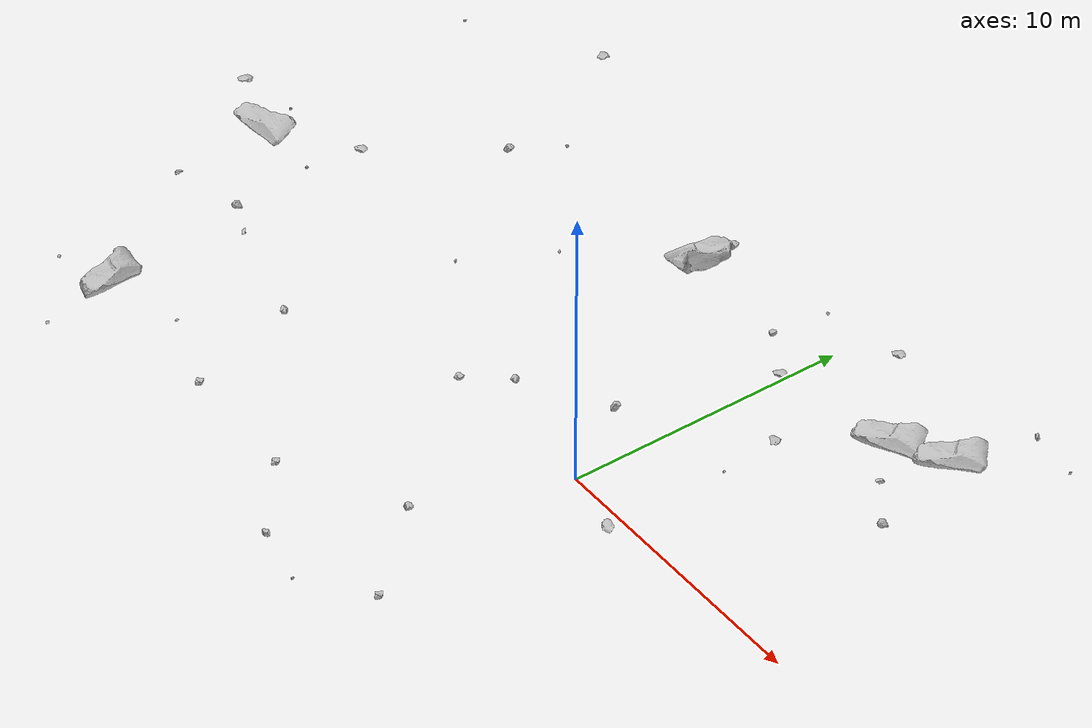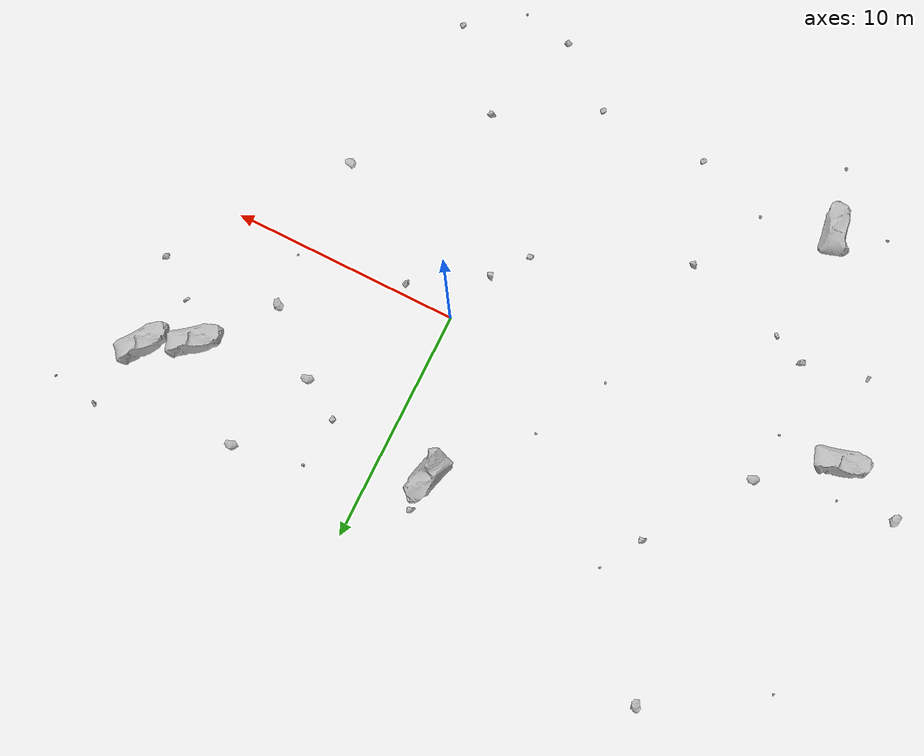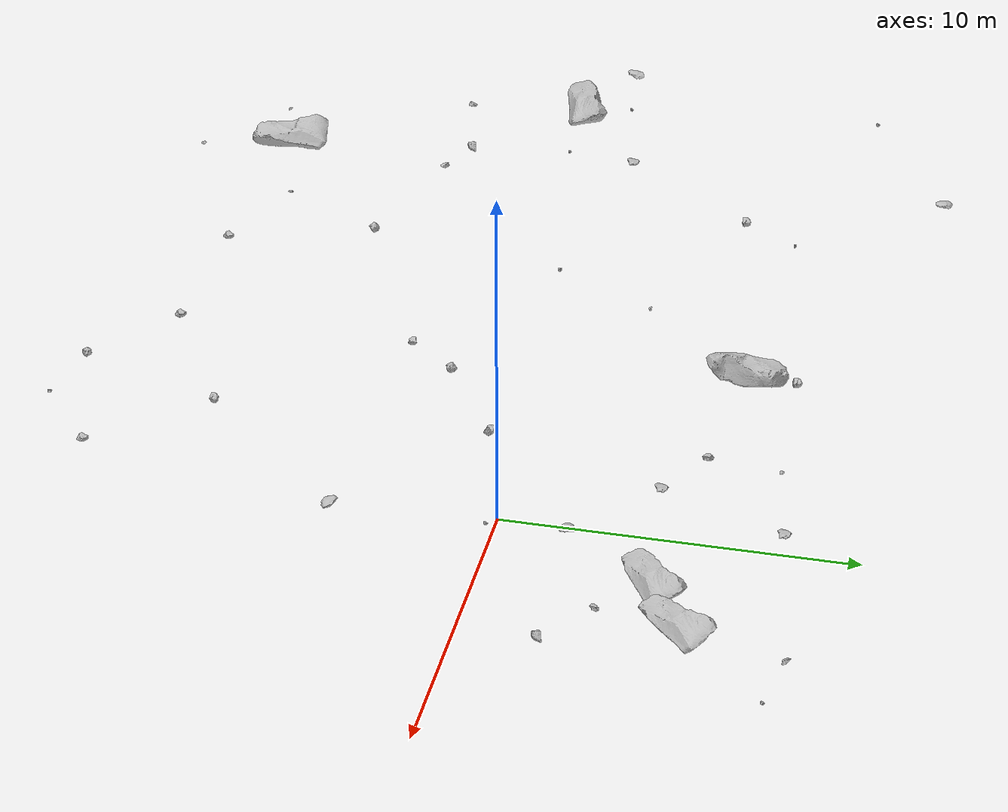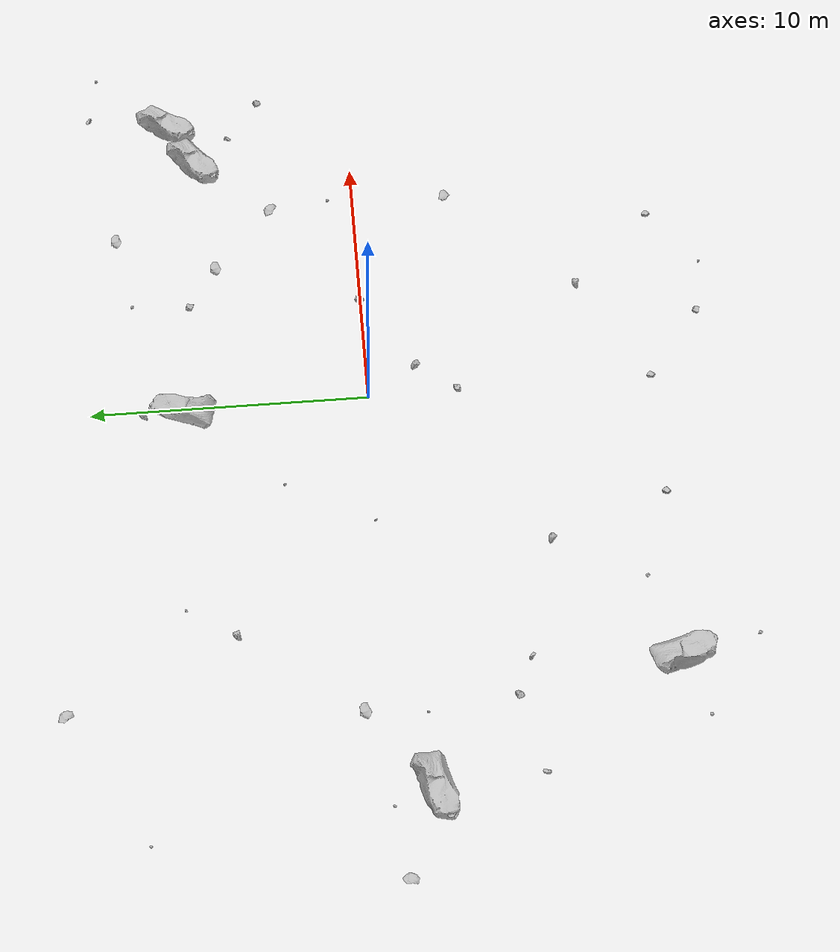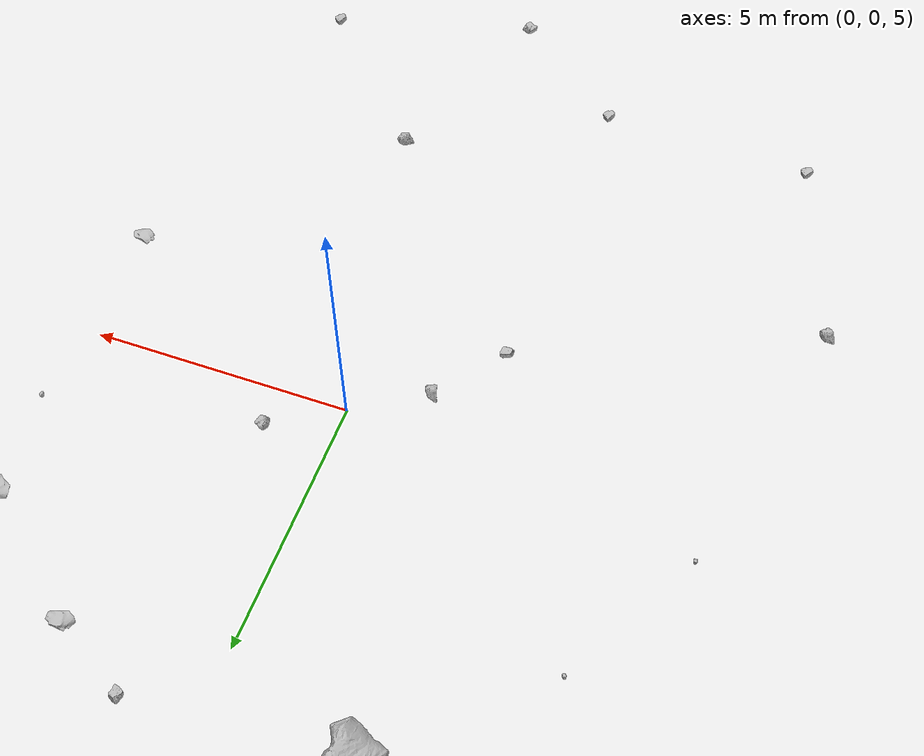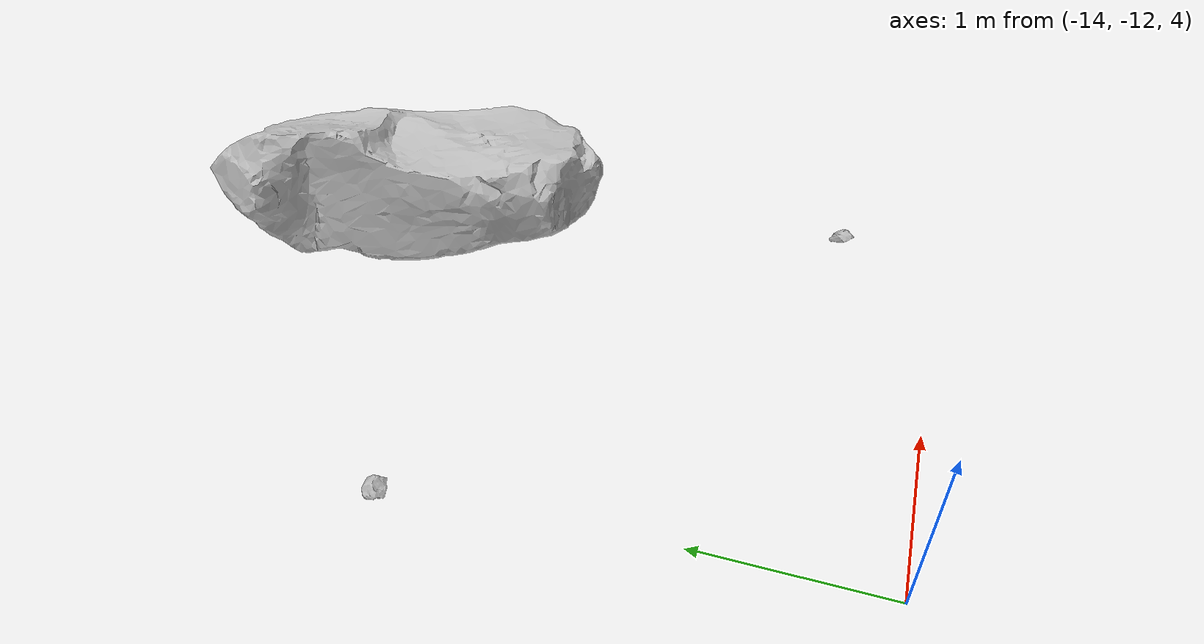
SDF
<sdf version="1.7">
 <world name="marsyard">
  <gravity>0 0 -9.81</gravity>
  <physics name="dart_physics" type="ignored">
   <max_step_size>0.003</max_step_size>
   <real_time_update_rate>333</real_time_update_rate>
   <real_time_factor>1.0</real_time_factor>
  </physics>
  <plugin filename="ignition-gazebo-physics-system" name="ignition::gazebo::systems::Physics"/>
  <plugin filename="ignition-gazebo-user-commands-system" name="ignition::gazebo::systems::UserCommands"/>
  <plugin filename="ignition-gazebo-scene-broadcaster-system" name="ignition::gazebo::systems::SceneBroadcaster"/>
  <plugin filename="ignition-gazebo-contact-system" name="ignition::gazebo::systems::Contact"/>
  <scene>
   <ambient>0.95 0.95 0.95 1</ambient>
   <background>0.70 0.70 0.70 1</background>
   <shadows>false</shadows>
  </scene>
  <light type="directional" name="sun">
   <cast_shadows>false</cast_shadows>
   <pose>0 0 30 0 0 0</pose>
   <diffuse>1 1 1 1</diffuse>
   <specular>0.15 0.15 0.15 1</specular>
   <direction>-0.35 0.1 -0.93</direction>
  </light>
  <model name="Rock_3">
   <static>true</static>
   <pose>-16.8774 7.7496 4.0000 0.0000 0.0000 -2.1353</pose>
   <link name="link">
    <visual name="visual">
     <geometry><mesh><uri>package://rock_generator/rocks_ws/rock_9/meshes/rock_9.stl</uri></mesh></geometry>
    </visual>
    <collision name="collision">
     <geometry><mesh><uri>package://rock_generator/rocks_ws/rock_9/meshes/rock_9.stl</uri></mesh></geometry>
    </collision>
   </link>
  </model>
  <model name="Rock_4">
   <static>true</static>
   <pose>-10.3779 4.8238 4.0000 0.0000 0.0000 0.2378</pose>
   <link name="link">
    <visual name="visual">
     <geometry><mesh><uri>package://rock_generator/rocks_ws/rock_3/meshes/rock_3.stl</uri></mesh></geometry>
    </visual>
    <collision name="collision">
     <geometry><mesh><uri>package://rock_generator/rocks_ws/rock_3/meshes/rock_3.stl</uri></mesh></geometry>
    </collision>
   </link>
  </model>
  <model name="Rock_5">
   <static>true</static>
   <pose>-1.1378 -1.5239 4.0000 0.0000 0.0000 -1.2308</pose>
   <link name="link">
    <visual name="visual">
     <geometry><mesh><uri>package://rock_generator/rocks_ws/rock_3/meshes/rock_3.stl</uri></mesh></geometry>
    </visual>
    <collision name="collision">
     <geometry><mesh><uri>package://rock_generator/rocks_ws/rock_3/meshes/rock_3.stl</uri></mesh></geometry>
    </collision>
   </link>
  </model>
  <model name="Rock_7">
   <static>true</static>
   <pose>-11.7680 -4.2157 4.0000 0.0000 0.0000 -0.8386</pose>
   <link name="link">
    <visual name="visual">
     <geometry><mesh><uri>package://rock_generator/rocks_ws/rock_6/meshes/rock_6.stl</uri></mesh></geometry>
    </visual>
   </link>
  </model>
  <model name="Rock_8">
   <static>true</static>
   <pose>-12.6309 10.2912 4.0000 0.0000 0.0000 1.8268</pose>
   <link name="link">
    <visual name="visual">
     <geometry><mesh><uri>package://rock_generator/rocks_ws/rock_8/meshes/rock_8.stl</uri></mesh></geometry>
    </visual>
    <collision name="collision">
     <geometry><mesh><uri>package://rock_generator/rocks_ws/rock_8/meshes/rock_8.stl</uri></mesh></geometry>
    </collision>
   </link>
  </model>
  <model name="Rock_9">
   <static>true</static>
   <pose>-13.3449 -0.8286 4.0000 0.0000 0.0000 0.4350</pose>
   <link name="link">
    <visual name="visual">
     <geometry><mesh><uri>package://rock_generator/rocks_ws/rock_9/meshes/rock_9.stl</uri></mesh></geometry>
    </visual>
    <collision name="collision">
     <geometry><mesh><uri>package://rock_generator/rocks_ws/rock_9/meshes/rock_9.stl</uri></mesh></geometry>
    </collision>
   </link>
  </model>
  <model name="Rock_10">
   <static>true</static>
   <pose>-2.1005 -9.3647 4.0000 0.0000 0.0000 0.0830</pose>
   <link name="link">
    <visual name="visual">
     <geometry><mesh><uri>package://rock_generator/rocks_ws/rock_1/meshes/rock_1.stl</uri></mesh></geometry>
    </visual>
   </link>
  </model>
  <model name="Rock_11">
   <static>true</static>
   <pose>-6.4499 -9.2282 4.0000 0.0000 0.0000 -0.0949</pose>
   <link name="link">
    <visual name="visual">
     <geometry><mesh><uri>package://rock_generator/rocks_ws/rock_1/meshes/rock_1.stl</uri></mesh></geometry>
    </visual>
    <collision name="collision">
     <geometry><mesh><uri>package://rock_generator/rocks_ws/rock_1/meshes/rock_1.stl</uri></mesh></geometry>
    </collision>
   </link>
  </model>
  <model name="Rock_12">
   <static>true</static>
   <pose>-2.0879 -2.8030 4.0000 0.0000 0.0000 -0.7704</pose>
   <link name="link">
    <visual name="visual">
     <geometry><mesh><uri>package://rock_generator/rocks_ws/rock_1/meshes/rock_1.stl</uri></mesh></geometry>
    </visual>
   </link>
  </model>
  <model name="Rock_13">
   <static>true</static>
   <pose>10.0598 9.4664 4.0000 0.0000 0.0000 2.4888</pose>
   <link name="link">
    <visual name="visual">
     <geometry><mesh><uri>package://rock_generator/rocks_ws/rock_6/meshes/rock_6.stl</uri></mesh></geometry>
    </visual>
    <collision name="collision">
     <geometry><mesh><uri>package://rock_generator/rocks_ws/rock_6/meshes/rock_6.stl</uri></mesh></geometry>
    </collision>
   </link>
  </model>
  <model name="Rock_14">
   <static>true</static>
   <pose>3.3460 5.1174 4.0000 0.0000 0.0000 -3.1135</pose>
   <link name="link">
    <visual name="visual">
     <geometry><mesh><uri>package://rock_generator/rocks_ws/rock_8/meshes/rock_8.stl</uri></mesh></geometry>
    </visual>
   </link>
  </model>
  <model name="Rock_15">
   <static>true</static>
   <pose>-15.5001 -4.2381 4.0000 0.0000 0.0000 1.2493</pose>
   <link name="link">
    <visual name="visual">
     <geometry><mesh><uri>package://rock_generator/rocks_ws/rock_6/meshes/rock_6.stl</uri></mesh></geometry>
    </visual>
    <collision name="collision">
     <geometry><mesh><uri>package://rock_generator/rocks_ws/rock_6/meshes/rock_6.stl</uri></mesh></geometry>
    </collision>
   </link>
  </model>
  <model name="Rock_16">
   <static>true</static>
   <pose>-12.0809 -8.9504 4.0000 0.0000 0.0000 1.9508</pose>
   <link name="link">
    <visual name="visual">
     <geometry><mesh><uri>package://rock_generator/rocks_ws/rock_4/meshes/rock_4.stl</uri></mesh></geometry>
    </visual>
   </link>
  </model>
  <model name="Rock_17">
   <static>true</static>
   <pose>5.6757 3.1068 4.0000 0.0000 0.0000 2.2875</pose>
   <link name="link">
    <visual name="visual">
     <geometry><mesh><uri>package://rock_generator/rocks_ws/rock_8/meshes/rock_8.stl</uri></mesh></geometry>
    </visual>
   </link>
  </model>
  <model name="Rock_18">
   <static>true</static>
   <pose>9.4734 6.6103 4.0000 0.0000 0.0000 1.0897</pose>
   <link name="link">
    <visual name="visual">
     <geometry><mesh><uri>package://rock_generator/rocks_ws/rock_4/meshes/rock_4.stl</uri></mesh></geometry>
    </visual>
   </link>
  </model>
  <model name="Rock_19">
   <static>true</static>
   <pose>5.8024 -3.1261 4.0000 0.0000 0.0000 -0.5696</pose>
   <link name="link">
    <visual name="visual">
     <geometry><mesh><uri>package://rock_generator/rocks_ws/rock_8/meshes/rock_8.stl</uri></mesh></geometry>
    </visual>
   </link>
  </model>
  <model name="Rock_21">
   <static>true</static>
   <pose>-2.2879 7.6154 4.0000 0.0000 0.0000 0.3201</pose>
   <link name="link">
    <visual name="visual">
     <geometry><mesh><uri>package://rock_generator/rocks_ws/rock_3/meshes/rock_3.stl</uri></mesh></geometry>
    </visual>
   </link>
  </model>
  <model name="Rock_22">
   <static>true</static>
   <pose>8.8811 4.4704 4.0000 0.0000 0.0000 -2.2113</pose>
   <link name="link">
    <visual name="visual">
     <geometry><mesh><uri>package://rock_generator/rocks_ws/rock_6/meshes/rock_6.stl</uri></mesh></geometry>
    </visual>
    <collision name="collision">
     <geometry><mesh><uri>package://rock_generator/rocks_ws/rock_6/meshes/rock_6.stl</uri></mesh></geometry>
    </collision>
   </link>
  </model>
  <model name="Rock_24">
   <static>true</static>
   <pose>-13.0302 -3.5896 4.0000 0.0000 0.0000 -2.8156</pose>
   <link name="link">
    <visual name="visual">
     <geometry><mesh><uri>package://rock_generator/rocks_ws/rock_3/meshes/rock_3.stl</uri></mesh></geometry>
    </visual>
    <collision name="collision">
     <geometry><mesh><uri>package://rock_generator/rocks_ws/rock_3/meshes/rock_3.stl</uri></mesh></geometry>
    </collision>
   </link>
  </model>
  <model name="Rock_25">
   <static>true</static>
   <pose>-6.7299 0.2784 4.0000 0.0000 0.0000 1.7490</pose>
   <link name="link">
    <visual name="visual">
     <geometry><mesh><uri>package://rock_generator/rocks_ws/rock_9/meshes/rock_9.stl</uri></mesh></geometry>
    </visual>
   </link>
  </model>
  <model name="Rock_26">
   <static>true</static>
   <pose>-9.3358 -8.2083 4.0000 0.0000 0.0000 -1.0528</pose>
   <link name="link">
    <visual name="visual">
     <geometry><mesh><uri>package://rock_generator/rocks_ws/rock_5/meshes/rock_5.stl</uri></mesh></geometry>
    </visual>
    <collision name="collision">
     <geometry><mesh><uri>package://rock_generator/rocks_ws/rock_5/meshes/rock_5.stl</uri></mesh></geometry>
    </collision>
   </link>
  </model>
  <model name="Rock_27">
   <static>true</static>
   <pose>10.3526 3.4314 4.0000 0.0000 0.0000 -2.7477</pose>
   <link name="link">
    <visual name="visual">
     <geometry><mesh><uri>package://rock_generator/rocks_ws/rock_3/meshes/rock_3.stl</uri></mesh></geometry>
    </visual>
    <collision name="collision">
     <geometry><mesh><uri>package://rock_generator/rocks_ws/rock_3/meshes/rock_3.stl</uri></mesh></geometry>
    </collision>
   </link>
  </model>
  <model name="Rock_28">
   <static>true</static>
   <pose>0.3383 -11.3156 4.0000 0.0000 0.0000 1.7949</pose>
   <link name="link">
    <visual name="visual">
     <geometry><mesh><uri>package://rock_generator/rocks_ws/rock_1/meshes/rock_1.stl</uri></mesh></geometry>
    </visual>
   </link>
  </model>
  <model name="Rock_29">
   <static>true</static>
   <pose>-14.0843 -9.5011 4.0000 0.0000 0.0000 0.1468</pose>
   <link name="link">
    <visual name="visual">
     <geometry><mesh><uri>package://rock_generator/rocks_ws/rock_5/meshes/rock_5.stl</uri></mesh></geometry>
    </visual>
   </link>
  </model>
  <model name="Rock_30">
   <static>true</static>
   <pose>-2.2867 6.3885 4.0000 0.0000 0.0000 -1.6627</pose>
   <link name="link">
    <visual name="visual">
     <geometry><mesh><uri>package://rock_generator/rocks_ws/rock_4/meshes/rock_4.stl</uri></mesh></geometry>
    </visual>
   </link>
  </model>
  <model name="Rock_31">
   <static>true</static>
   <pose>1.8015 6.0356 4.0000 0.0000 0.0000 -2.6884</pose>
   <link name="link">
    <visual name="visual">
     <geometry><mesh><uri>package://rock_generator/rocks_ws/rock_1/meshes/rock_1.stl</uri></mesh></geometry>
    </visual>
    <collision name="collision">
     <geometry><mesh><uri>package://rock_generator/rocks_ws/rock_1/meshes/rock_1.stl</uri></mesh></geometry>
    </collision>
   </link>
  </model>
  <model name="Rock_33">
   <static>true</static>
   <pose>7.7605 5.6714 4.0000 0.0000 0.0000 0.8023</pose>
   <link name="link">
    <visual name="visual">
     <geometry><mesh><uri>package://rock_generator/rocks_ws/rock_4/meshes/rock_4.stl</uri></mesh></geometry>
    </visual>
   </link>
  </model>
  <model name="Rock_35">
   <static>true</static>
   <pose>11.8625 9.1941 4.0000 0.0000 0.0000 -1.9782</pose>
   <link name="link">
    <visual name="visual">
     <geometry><mesh><uri>package://rock_generator/rocks_ws/rock_9/meshes/rock_9.stl</uri></mesh></geometry>
    </visual>
   </link>
  </model>
  <model name="Rock_36">
   <static>true</static>
   <pose>-5.2291 3.1490 4.0000 0.0000 0.0000 2.2392</pose>
   <link name="link">
    <visual name="visual">
     <geometry><mesh><uri>package://rock_generator/rocks_ws/rock_9/meshes/rock_9.stl</uri></mesh></geometry>
    </visual>
   </link>
  </model>
  <model name="Rock_37">
   <static>true</static>
   <pose>-13.1543 1.1170 4.0000 0.0000 0.0000 -3.0749</pose>
   <link name="link">
    <visual name="visual">
     <geometry><mesh><uri>package://rock_generator/rocks_ws/rock_8/meshes/rock_8.stl</uri></mesh></geometry>
    </visual>
   </link>
  </model>
  <model name="Rock_38">
   <static>true</static>
   <pose>4.7293 8.5565 4.0000 0.0000 0.0000 3.1041</pose>
   <link name="link">
    <visual name="visual">
     <geometry><mesh><uri>package://rock_generator/rocks_ws/rock_8/meshes/rock_8.stl</uri></mesh></geometry>
    </visual>
    <collision name="collision">
     <geometry><mesh><uri>package://rock_generator/rocks_ws/rock_8/meshes/rock_8.stl</uri></mesh></geometry>
    </collision>
   </link>
  </model>
  <model name="Rock_39">
   <static>true</static>
   <pose>5.9063 1.0317 4.0000 0.0000 0.0000 -1.9682</pose>
   <link name="link">
    <visual name="visual">
     <geometry><mesh><uri>package://rock_generator/rocks_ws/rock_9/meshes/rock_9.stl</uri></mesh></geometry>
    </visual>
    <collision name="collision">
     <geometry><mesh><uri>package://rock_generator/rocks_ws/rock_9/meshes/rock_9.stl</uri></mesh></geometry>
    </collision>
   </link>
  </model>
  <model name="Rock_40">
   <static>true</static>
   <pose>-16.2108 0.4451 4.0000 0.0000 0.0000 -2.2247</pose>
   <link name="link">
    <visual name="visual">
     <geometry><mesh><uri>package://rock_generator/rocks_ws/rock_9/meshes/rock_9.stl</uri></mesh></geometry>
    </visual>
   </link>
  </model>
  <model name="Rock_42">
   <static>true</static>
   <pose>-18.4068 0.1471 4.0000 0.0000 0.0000 1.1604</pose>
   <link name="link">
    <visual name="visual">
     <geometry><mesh><uri>package://rock_generator/rocks_ws/rock_8/meshes/rock_8.stl</uri></mesh></geometry>
    </visual>
    <collision name="collision">
     <geometry><mesh><uri>package://rock_generator/rocks_ws/rock_8/meshes/rock_8.stl</uri></mesh></geometry>
    </collision>
   </link>
  </model>
  <model name="Rock_43">
   <static>true</static>
   <pose>-9.4274 6.4943 4.0000 0.0000 0.0000 0.3523</pose>
   <link name="link">
    <visual name="visual">
     <geometry><mesh><uri>package://rock_generator/rocks_ws/rock_9/meshes/rock_9.stl</uri></mesh></geometry>
    </visual>
   </link>
  </model>
  <model name="Rock_44">
   <static>true</static>
   <pose>4.4074 -10.1339 4.0000 0.0000 0.0000 0.1603</pose>
   <link name="link">
    <visual name="visual">
     <geometry><mesh><uri>package://rock_generator/rocks_ws/rock_1/meshes/rock_1.stl</uri></mesh></geometry>
    </visual>
   </link>
  </model>
  <model name="Rock_45">
   <static>true</static>
   <pose>2.3505 -11.7096 4.0000 0.0000 0.0000 -1.4420</pose>
   <link name="link">
    <visual name="visual">
     <geometry><mesh><uri>package://rock_generator/rocks_ws/rock_9/meshes/rock_9.stl</uri></mesh></geometry>
    </visual>
    <collision name="collision">
     <geometry><mesh><uri>package://rock_generator/rocks_ws/rock_9/meshes/rock_9.stl</uri></mesh></geometry>
    </collision>
   </link>
  </model>
  <model name="Rock_46">
   <static>true</static>
   <pose>1.7502 -7.4059 4.0000 0.0000 0.0000 -0.1789</pose>
   <link name="link">
    <visual name="visual">
     <geometry><mesh><uri>package://rock_generator/rocks_ws/rock_3/meshes/rock_3.stl</uri></mesh></geometry>
    </visual>
   </link>
  </model>
  <model name="Rock_47">
   <static>true</static>
   <pose>-7.8779 -5.3844 4.0000 0.0000 0.0000 -0.8789</pose>
   <link name="link">
    <visual name="visual">
     <geometry><mesh><uri>package://rock_generator/rocks_ws/rock_3/meshes/rock_3.stl</uri></mesh></geometry>
    </visual>
    <collision name="collision">
     <geometry><mesh><uri>package://rock_generator/rocks_ws/rock_3/meshes/rock_3.stl</uri></mesh></geometry>
    </collision>
   </link>
  </model>
  <model name="Rock_48">
   <static>true</static>
   <pose>-11.5398 -11.4470 4.0000 0.0000 0.0000 2.5803</pose>
   <link name="link">
    <visual name="visual">
     <geometry><mesh><uri>package://rock_generator/rocks_ws/rock_5/meshes/rock_5.stl</uri></mesh></geometry>
    </visual>
   </link>
  </model>
  <model name="Rock_49">
   <static>true</static>
   <pose>1.9819 8.0207 4.0000 0.0000 0.0000 3.1276</pose>
   <link name="link">
    <visual name="visual">
     <geometry><mesh><uri>package://rock_generator/rocks_ws/rock_5/meshes/rock_5.stl</uri></mesh></geometry>
    </visual>
   </link>
  </model>
  <model name="Rock_50">
   <static>true</static>
   <pose>-15.7809 -0.8678 4.0000 0.0000 0.0000 0.4139</pose>
   <link name="link">
    <visual name="visual">
     <geometry><mesh><uri>package://rock_generator/rocks_ws/rock_4/meshes/rock_4.stl</uri></mesh></geometry>
    </visual>
    <collision name="collision">
     <geometry><mesh><uri>package://rock_generator/rocks_ws/rock_4/meshes/rock_4.stl</uri></mesh></geometry>
    </collision>
   </link>
  </model>
  <model name="Rock_51">
   <static>true</static>
   <pose>1.7712 0.1614 4.0000 0.0000 0.0000 1.1220</pose>
   <link name="link">
    <visual name="visual">
     <geometry><mesh><uri>package://rock_generator/rocks_ws/rock_3/meshes/rock_3.stl</uri></mesh></geometry>
    </visual>
   </link>
  </model>
 </world>
</sdf>
